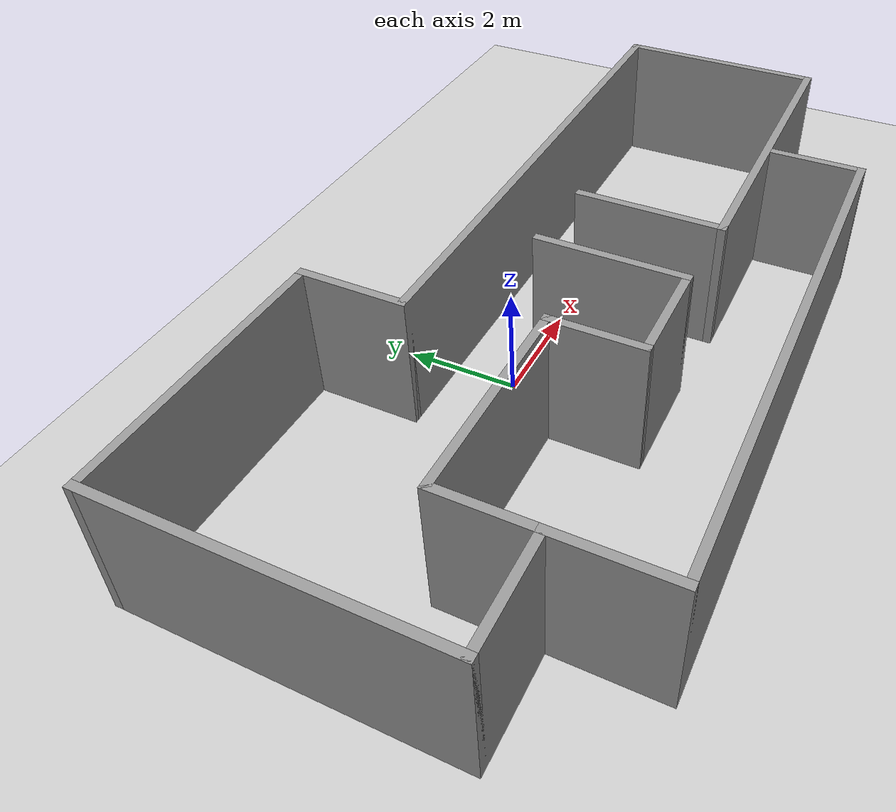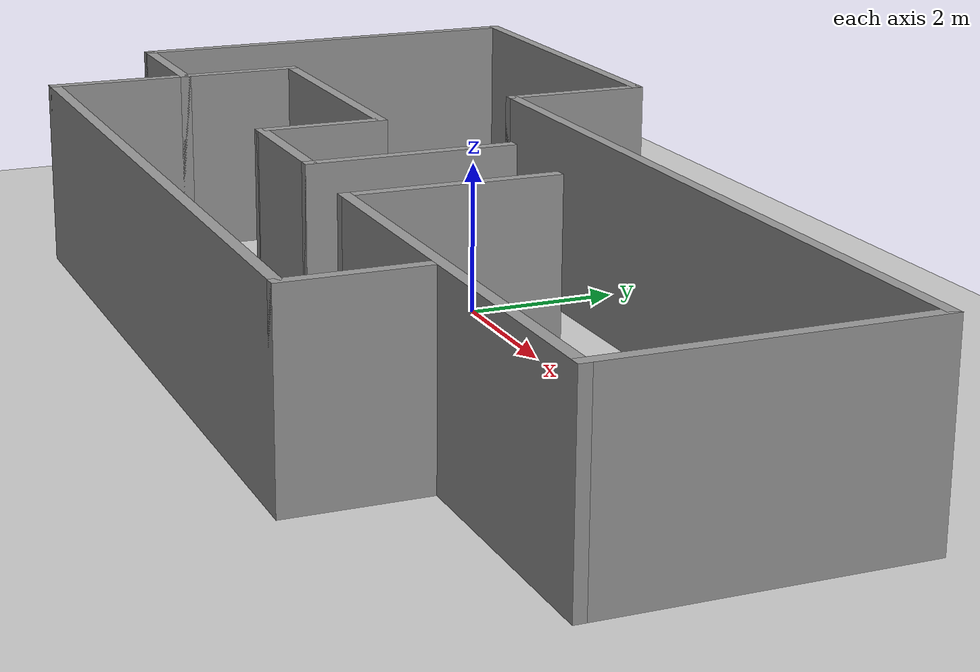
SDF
<sdf version="1.6">
 <world name="default">
  <light name="sun" type="directional">
   <pose>0 0 10 0 -0 0</pose>
   <diffuse>0.8 0.8 0.8 1</diffuse>
   <specular>0.2 0.2 0.2 1</specular>
   <attenuation>
    <range>1000</range>
    <constant>0.9</constant>
    <linear>0.01</linear>
    <quadratic>0.001</quadratic>
   </attenuation>
   <direction>-0.5 0.1 -0.9</direction>
  </light>
  <model name="ground_plane">
   <static>1</static>
   <link name="link">
    <collision name="collision">
     <geometry><plane><normal>0 0 1</normal><size>100 100</size></plane></geometry>
     <surface>
      <contact><collide_bitmask>65535</collide_bitmask></contact>
      <friction><ode><mu>100</mu><mu2>50</mu2></ode></friction>
     </surface>
    </collision>
    <visual name="visual">
     <cast_shadows>0</cast_shadows>
     <geometry><plane><normal>0 0 1</normal><size>100 100</size></plane></geometry>
     <material>
      <script><uri>file://media/materials/scripts/gazebo.material</uri><name>Gazebo/Grey</name></script>
     </material>
    </visual>
   </link>
  </model>
  <gravity>0 0 -9.8</gravity>
  <magnetic_field>6e-06 2.3e-05 -4.2e-05</magnetic_field>
  <atmosphere type="adiabatic"/>
  <physics name="default_physics" default="0" type="ode">
   <max_step_size>0.001</max_step_size>
   <real_time_factor>1</real_time_factor>
   <real_time_update_rate>1000</real_time_update_rate>
  </physics>
  <scene><ambient>0.4 0.4 0.4 1</ambient><background>0.7 0.7 0.7 1</background><shadows>1</shadows></scene>
  <audio><device>default</device></audio>
  <spherical_coordinates>
   <surface_model>EARTH_WGS84</surface_model>
   <latitude_deg>0</latitude_deg>
   <longitude_deg>0</longitude_deg>
   <elevation>0</elevation>
   <heading_deg>0</heading_deg>
  </spherical_coordinates>
  <model name="tour_world">
   <pose>1.24968 -0.712082 0 0 -0 0</pose>
   <link name="Wall_0">
    <collision name="Wall_0_Collision">
     <geometry><box><size>5.75 0.15 2.5</size></box></geometry>
     <pose>0 0 1.25 0 -0 0</pose>
    </collision>
    <visual name="Wall_0_Visual">
     <pose>0 0 1.25 0 -0 0</pose>
     <geometry><box><size>5.75 0.15 2.5</size></box></geometry>
     <material>
      <script><uri>file://media/materials/scripts/gazebo.material</uri><name>Gazebo/Grey</name></script>
      <ambient>1 1 1 1</ambient>
     </material>
     <meta><layer>0</layer></meta>
    </visual>
    <pose>-7.475 0.925 0 0 -0 -1.5708</pose>
   </link>
   <link name="Wall_1">
    <collision name="Wall_1_Collision">
     <geometry><box><size>2 0.15 2.5</size></box></geometry>
     <pose>0 0 1.25 0 -0 0</pose>
    </collision>
    <visual name="Wall_1_Visual">
     <pose>0 0 1.25 0 -0 0</pose>
     <geometry><box><size>2 0.15 2.5</size></box></geometry>
     <material>
      <script><uri>file://media/materials/scripts/gazebo.material</uri><name>Gazebo/Grey</name></script>
      <ambient>1 1 1 1</ambient>
     </material>
     <meta><layer>0</layer></meta>
    </visual>
    <pose>-6.55 -1.875 0 0 -0 0</pose>
   </link>
   <link name="Wall_10">
    <collision name="Wall_10_Collision">
     <geometry><box><size>10.25 0.15 2.5</size></box></geometry>
     <pose>0 0 1.25 0 -0 0</pose>
    </collision>
    <visual name="Wall_10_Visual">
     <pose>0 0 1.25 0 -0 0</pose>
     <geometry><box><size>10.25 0.15 2.5</size></box></geometry>
     <material>
      <script><uri>file://media/materials/scripts/gazebo.material</uri><name>Gazebo/Grey</name></script>
      <ambient>1 1 1 1</ambient>
     </material>
     <meta><layer>0</layer></meta>
    </visual>
    <pose>2.425 1.875 0 0 -0 0</pose>
   </link>
   <link name="Wall_11">
    <collision name="Wall_11_Collision">
     <geometry><box><size>4 0.15 2.5</size></box></geometry>
     <pose>0 0 1.25 0 -0 0</pose>
    </collision>
    <visual name="Wall_11_Visual">
     <pose>0 0 1.25 0 -0 0</pose>
     <geometry><box><size>4 0.15 2.5</size></box></geometry>
     <material>
      <script><uri>file://media/materials/scripts/gazebo.material</uri><name>Gazebo/Grey</name></script>
      <ambient>1 1 1 1</ambient>
     </material>
     <meta><layer>0</layer></meta>
    </visual>
    <pose>7.475 -0.05 0 0 -0 -1.5708</pose>
   </link>
   <link name="Wall_12">
    <collision name="Wall_12_Collision">
     <geometry><box><size>6.25 0.15 2.5</size></box></geometry>
     <pose>0 0 1.25 0 -0 0</pose>
    </collision>
    <visual name="Wall_12_Visual">
     <pose>0 0 1.25 0 -0 0</pose>
     <geometry><box><size>6.25 0.15 2.5</size></box></geometry>
     <material>
      <script><uri>file://media/materials/scripts/gazebo.material</uri><name>Gazebo/Grey</name></script>
      <ambient>1 1 1 1</ambient>
     </material>
     <meta><layer>0</layer></meta>
    </visual>
    <pose>4.425 -1.975 0 0 -0 3.14159</pose>
   </link>
   <link name="Wall_13">
    <collision name="Wall_13_Collision">
     <geometry><box><size>2.75 0.15 2.5</size></box></geometry>
     <pose>0 0 1.25 0 -0 0</pose>
    </collision>
    <visual name="Wall_13_Visual">
     <pose>0 0 1.25 0 -0 0</pose>
     <geometry><box><size>2.75 0.15 2.5</size></box></geometry>
     <material>
      <script><uri>file://media/materials/scripts/gazebo.material</uri><name>Gazebo/Grey</name></script>
      <ambient>1 1 1 1</ambient>
     </material>
     <meta><layer>0</layer></meta>
    </visual>
    <pose>1.375 -0.675 0 0 -0 1.5708</pose>
   </link>
   <link name="Wall_15">
    <collision name="Wall_15_Collision">
     <geometry><box><size>2 0.15 2.5</size></box></geometry>
     <pose>0 0 1.25 0 -0 0</pose>
    </collision>
    <visual name="Wall_15_Visual">
     <pose>0 0 1.25 0 -0 0</pose>
     <geometry><box><size>2 0.15 2.5</size></box></geometry>
     <material>
      <script><uri>file://media/materials/scripts/gazebo.material</uri><name>Gazebo/Grey</name></script>
      <ambient>1 1 1 1</ambient>
     </material>
     <meta><layer>0</layer></meta>
    </visual>
    <pose>-5.625 -2.8 0 0 -0 -1.5708</pose>
   </link>
   <link name="Wall_16">
    <collision name="Wall_16_Collision">
     <geometry><box><size>10 0.15 2.5</size></box></geometry>
     <pose>0 0 1.25 0 -0 0</pose>
    </collision>
    <visual name="Wall_16_Visual">
     <pose>0 0 1.25 0 -0 0</pose>
     <geometry><box><size>10 0.15 2.5</size></box></geometry>
     <material>
      <script><uri>file://media/materials/scripts/gazebo.material</uri><name>Gazebo/Grey</name></script>
      <ambient>1 1 1 1</ambient>
     </material>
     <meta><layer>0</layer></meta>
    </visual>
    <pose>-0.7 -3.725 0 0 -0 0</pose>
   </link>
   <link name="Wall_17">
    <collision name="Wall_17_Collision">
     <geometry><box><size>1.75 0.15 2.5</size></box></geometry>
     <pose>0 0 1.25 0 -0 0</pose>
    </collision>
    <visual name="Wall_17_Visual">
     <pose>0 0 1.25 0 -0 0</pose>
     <geometry><box><size>1.75 0.15 2.5</size></box></geometry>
     <material>
      <script><uri>file://media/materials/scripts/gazebo.material</uri><name>Gazebo/Grey</name></script>
      <ambient>1 1 1 1</ambient>
     </material>
     <meta><layer>0</layer></meta>
    </visual>
    <pose>4.225 -2.925 0 0 -0 1.5708</pose>
   </link>
   <link name="Wall_2">
    <collision name="Wall_2_Collision">
     <geometry><box><size>1.75 0.15 2.5</size></box></geometry>
     <pose>0 0 1.25 0 -0 0</pose>
    </collision>
    <visual name="Wall_2_Visual">
     <pose>0 0 1.25 0 -0 0</pose>
     <geometry><box><size>1.75 0.15 2.5</size></box></geometry>
     <material>
      <script><uri>file://media/materials/scripts/gazebo.material</uri><name>Gazebo/Grey</name></script>
      <ambient>1 1 1 1</ambient>
     </material>
     <meta><layer>0</layer></meta>
    </visual>
    <pose>-5.625 -1.075 0 0 -0 1.5708</pose>
   </link>
   <link name="Wall_3">
    <collision name="Wall_3_Collision">
     <geometry><box><size>3.75 0.15 2.5</size></box></geometry>
     <pose>0 0 1.25 0 -0 0</pose>
    </collision>
    <visual name="Wall_3_Visual">
     <pose>0 0 1.25 0 -0 0</pose>
     <geometry><box><size>3.75 0.15 2.5</size></box></geometry>
     <material>
      <script><uri>file://media/materials/scripts/gazebo.material</uri><name>Gazebo/Grey</name></script>
      <ambient>1 1 1 1</ambient>
     </material>
     <meta><layer>0</layer></meta>
    </visual>
    <pose>-3.825 -0.275 0 0 -0 0</pose>
   </link>
   <link name="Wall_4">
    <collision name="Wall_4_Collision">
     <geometry><box><size>1.75 0.15 2.5</size></box></geometry>
     <pose>0 0 1.25 0 -0 0</pose>
    </collision>
    <visual name="Wall_4_Visual">
     <pose>0 0 1.25 0 -0 0</pose>
     <geometry><box><size>1.75 0.15 2.5</size></box></geometry>
     <material>
      <script><uri>file://media/materials/scripts/gazebo.material</uri><name>Gazebo/Grey</name></script>
      <ambient>1 1 1 1</ambient>
     </material>
     <meta><layer>0</layer></meta>
    </visual>
    <pose>-2.025 -1.075 0 0 -0 -1.5708</pose>
   </link>
   <link name="Wall_5">
    <collision name="Wall_5_Collision">
     <geometry><box><size>2 0.15 2.5</size></box></geometry>
     <pose>0 0 1.25 0 -0 0</pose>
    </collision>
    <visual name="Wall_5_Visual">
     <pose>0 0 1.25 0 -0 0</pose>
     <geometry><box><size>2 0.15 2.5</size></box></geometry>
     <material>
      <script><uri>file://media/materials/scripts/gazebo.material</uri><name>Gazebo/Grey</name></script>
      <ambient>1 1 1 1</ambient>
     </material>
     <meta><layer>0</layer></meta>
    </visual>
    <pose>-1.1 -1.875 0 0 -0 0</pose>
   </link>
   <link name="Wall_6">
    <collision name="Wall_6_Collision">
     <geometry><box><size>2.75 0.15 2.5</size></box></geometry>
     <pose>0 0 1.25 0 -0 0</pose>
    </collision>
    <visual name="Wall_6_Visual">
     <pose>0 0 1.25 0 -0 0</pose>
     <geometry><box><size>2.75 0.15 2.5</size></box></geometry>
     <material>
      <script><uri>file://media/materials/scripts/gazebo.material</uri><name>Gazebo/Grey</name></script>
      <ambient>1 1 1 1</ambient>
     </material>
     <meta><layer>0</layer></meta>
    </visual>
    <pose>-0.175 -0.575 0 0 -0 1.5708</pose>
   </link>
   <link name="Wall_8">
    <collision name="Wall_8_Collision">
     <geometry><box><size>5 0.15 2.5</size></box></geometry>
     <pose>0 0 1.25 0 -0 0</pose>
    </collision>
    <visual name="Wall_8_Visual">
     <pose>0 0 1.25 0 -0 0</pose>
     <geometry><box><size>5 0.15 2.5</size></box></geometry>
     <material>
      <script><uri>file://media/materials/scripts/gazebo.material</uri><name>Gazebo/Grey</name></script>
      <ambient>1 1 1 1</ambient>
     </material>
     <meta><layer>0</layer></meta>
    </visual>
    <pose>-5.05 3.725 0 0 -0 0</pose>
   </link>
   <link name="Wall_9">
    <collision name="Wall_9_Collision">
     <geometry><box><size>2 0.15 2.5</size></box></geometry>
     <pose>0 0 1.25 0 -0 0</pose>
    </collision>
    <visual name="Wall_9_Visual">
     <pose>0 0 1.25 0 -0 0</pose>
     <geometry><box><size>2 0.15 2.5</size></box></geometry>
     <material>
      <script><uri>file://media/materials/scripts/gazebo.material</uri><name>Gazebo/Grey</name></script>
      <ambient>1 1 1 1</ambient>
     </material>
     <meta><layer>0</layer></meta>
    </visual>
    <pose>-2.625 2.8 0 0 -0 -1.5708</pose>
   </link>
   <static>1</static>
  </model>
 </world>
</sdf>
